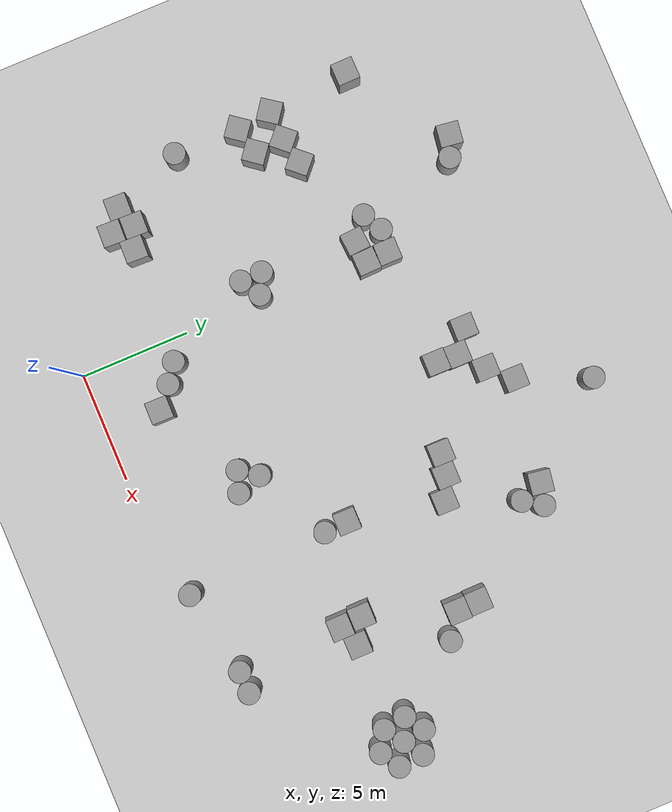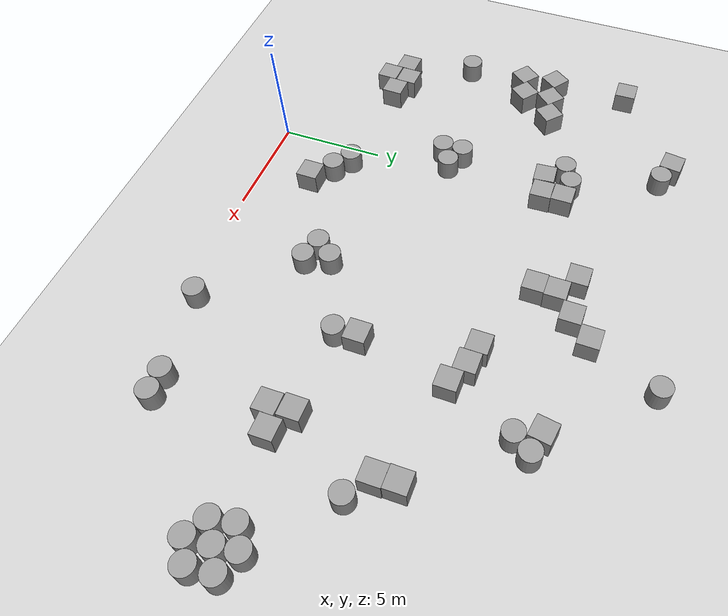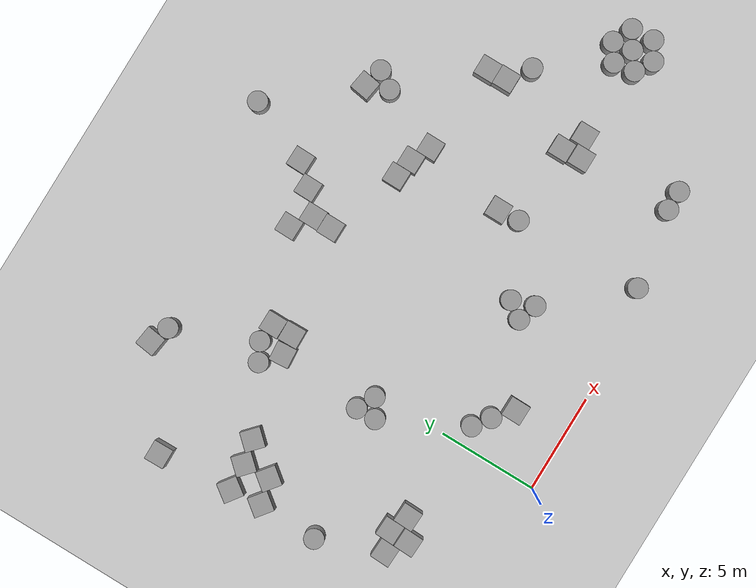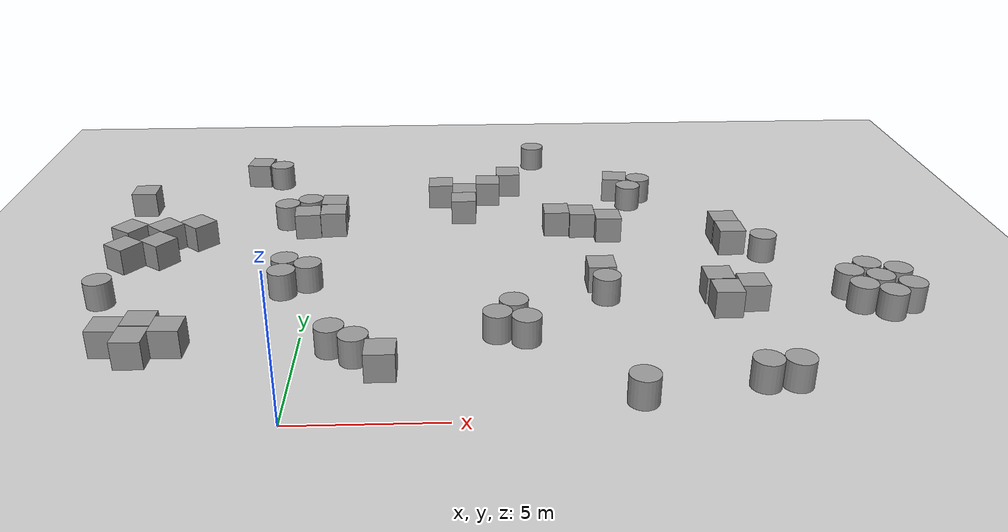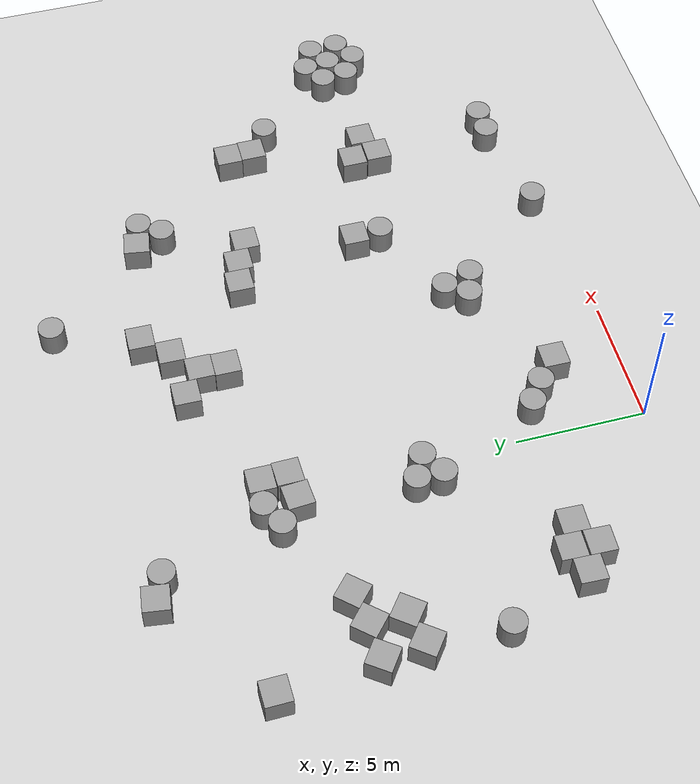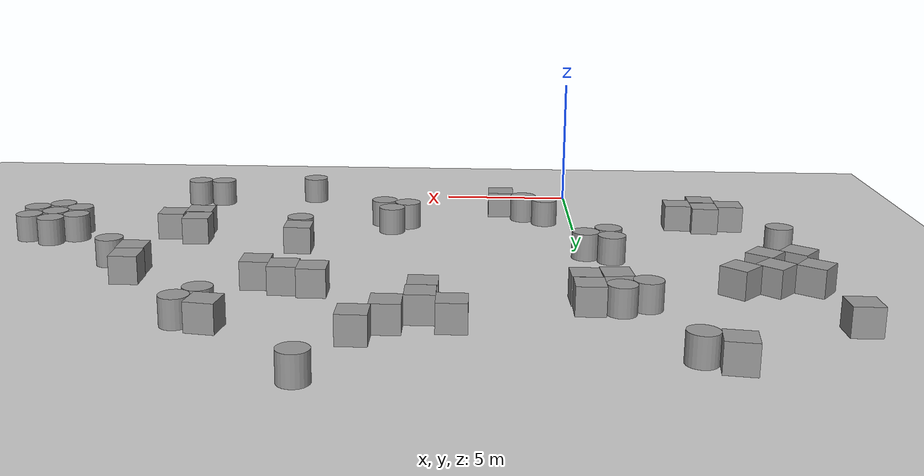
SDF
<sdf version="1.6">
 <world name="default">
  <model name="ground_plane">
   <static>1</static>
   <link name="link">
    <collision name="collision">
     <geometry><plane><normal>0 0 1</normal><size>100 100</size></plane></geometry>
     <surface><friction><ode><mu>100</mu><mu2>50</mu2></ode></friction></surface>
    </collision>
    <visual name="visual">
     <cast_shadows>0</cast_shadows>
     <geometry><plane><normal>0 0 1</normal><size>100 100</size></plane></geometry>
     <material>
      <script><uri>file://media/materials/scripts/gazebo.material</uri><name>Gazebo/Grey</name></script>
     </material>
    </visual>
   </link>
  </model>
  <model name="unit_box_1">
   <pose>-5.11694 4.7861 0.5 0 0 -0.03385</pose>
   <link name="link">
    <inertial>
     <mass>1</mass>
     <inertia>
      <ixx>0.166667</ixx>
      <ixy>0</ixy>
      <ixz>0</ixz>
      <iyy>0.166667</iyy>
      <iyz>0</iyz>
      <izz>0.166667</izz>
     </inertia>
    </inertial>
    <collision name="collision"><geometry><box><size>1 1 1</size></box></geometry></collision>
    <visual name="visual">
     <geometry><box><size>1 1 1</size></box></geometry>
     <material>
      <script><name>Gazebo/Grey</name><uri>file://media/materials/scripts/gazebo.material</uri></script>
     </material>
    </visual>
   </link>
  </model>
  <model name="unit_box_2">
   <pose>-5.15243 3.73753 0.5 0 0 -0.033765</pose>
   <link name="link">
    <inertial>
     <mass>1</mass>
     <inertia>
      <ixx>0.166667</ixx>
      <ixy>0</ixy>
      <ixz>0</ixz>
      <iyy>0.166667</iyy>
      <iyz>0</iyz>
      <izz>0.166667</izz>
     </inertia>
    </inertial>
    <collision name="collision"><geometry><box><size>1 1 1</size></box></geometry></collision>
    <visual name="visual">
     <geometry><box><size>1 1 1</size></box></geometry>
     <material>
      <script><name>Gazebo/Grey</name><uri>file://media/materials/scripts/gazebo.material</uri></script>
     </material>
    </visual>
   </link>
  </model>
  <model name="unit_cylinder_4">
   <pose>10.7497 0.834589 0.499942 0 0 -0.022066</pose>
   <link name="link">
    <inertial>
     <mass>1</mass>
     <inertia><ixx>0.145833</ixx><ixy>0</ixy><ixz>0</ixz><iyy>0.145833</iyy><iyz>0</iyz><izz>0.125</izz></inertia>
    </inertial>
    <collision name="collision">
     <geometry><cylinder><radius>0.5</radius><length>1</length></cylinder></geometry>
    </collision>
    <visual name="visual">
     <geometry><cylinder><radius>0.5</radius><length>1</length></cylinder></geometry>
     <material>
      <script><name>Gazebo/Grey</name><uri>file://media/materials/scripts/gazebo.material</uri></script>
     </material>
    </visual>
   </link>
  </model>
  <model name="unit_box_9">
   <pose>2.80573 2.69051 0.5 0 0 -0.00823</pose>
   <link name="link">
    <inertial>
     <mass>1</mass>
     <inertia>
      <ixx>0.166667</ixx>
      <ixy>0</ixy>
      <ixz>0</ixz>
      <iyy>0.166667</iyy>
      <iyz>0</iyz>
      <izz>0.166667</izz>
     </inertia>
    </inertial>
    <collision name="collision"><geometry><box><size>1 1 1</size></box></geometry></collision>
    <visual name="visual">
     <geometry><box><size>1 1 1</size></box></geometry>
     <material>
      <script><name>Gazebo/Grey</name><uri>file://media/materials/scripts/gazebo.material</uri></script>
     </material>
    </visual>
   </link>
  </model>
  <model name="unit_cylinder_8_0">
   <pose>-0.145957 8.69713 0.499942 0 0 -0.118352</pose>
   <link name="link">
    <inertial>
     <mass>1</mass>
     <inertia><ixx>0.145833</ixx><ixy>0</ixy><ixz>0</ixz><iyy>0.145833</iyy><iyz>0</iyz><izz>0.125</izz></inertia>
    </inertial>
    <collision name="collision">
     <geometry><cylinder><radius>0.5</radius><length>1</length></cylinder></geometry>
    </collision>
    <visual name="visual">
     <geometry><cylinder><radius>0.5</radius><length>1</length></cylinder></geometry>
     <material>
      <script><name>Gazebo/Grey</name><uri>file://media/materials/scripts/gazebo.material</uri></script>
     </material>
    </visual>
   </link>
  </model>
  <model name="unit_box_23">
   <pose>9.27836 13.3022 0.5 0 0 -0.004743</pose>
   <link name="link">
    <inertial>
     <mass>1</mass>
     <inertia>
      <ixx>0.166667</ixx>
      <ixy>0</ixy>
      <ixz>0</ixz>
      <iyy>0.166667</iyy>
      <iyz>0</iyz>
      <izz>0.166667</izz>
     </inertia>
    </inertial>
    <collision name="collision"><geometry><box><size>1 1 1</size></box></geometry></collision>
    <visual name="visual">
     <geometry><box><size>1 1 1</size></box></geometry>
     <material>
      <script><name>Gazebo/Grey</name><uri>file://media/materials/scripts/gazebo.material</uri></script>
     </material>
    </visual>
   </link>
  </model>
  <model name="unit_cylinder_13">
   <pose>14.6463 1.55239 0.499942 0 -0 0.00046</pose>
   <link name="link">
    <inertial>
     <mass>1</mass>
     <inertia><ixx>0.145833</ixx><ixy>0</ixy><ixz>0</ixz><iyy>0.145833</iyy><iyz>0</iyz><izz>0.125</izz></inertia>
    </inertial>
    <collision name="collision">
     <geometry><cylinder><radius>0.5</radius><length>1</length></cylinder></geometry>
    </collision>
    <visual name="visual">
     <geometry><cylinder><radius>0.5</radius><length>1</length></cylinder></geometry>
     <material>
      <script><name>Gazebo/Grey</name><uri>file://media/materials/scripts/gazebo.material</uri></script>
     </material>
    </visual>
   </link>
  </model>
  <model name="unit_cylinder_19">
   <pose>15.6462 1.57109 0.499942 0 0 -0.001342</pose>
   <link name="link">
    <inertial>
     <mass>1</mass>
     <inertia><ixx>0.145833</ixx><ixy>0</ixy><ixz>0</ixz><iyy>0.145833</iyy><iyz>0</iyz><izz>0.125</izz></inertia>
    </inertial>
    <collision name="collision">
     <geometry><cylinder><radius>0.5</radius><length>1</length></cylinder></geometry>
    </collision>
    <visual name="visual">
     <geometry><cylinder><radius>0.5</radius><length>1</length></cylinder></geometry>
     <material>
      <script><name>Gazebo/Grey</name><uri>file://media/materials/scripts/gazebo.material</uri></script>
     </material>
    </visual>
   </link>
  </model>
  <model name="unit_box_30">
   <pose>15.8822 11.2878 0.5 0 -0 0.004435</pose>
   <link name="link">
    <inertial>
     <mass>1</mass>
     <inertia>
      <ixx>0.166667</ixx>
      <ixy>0</ixy>
      <ixz>0</ixz>
      <iyy>0.166667</iyy>
      <iyz>0</iyz>
      <izz>0.166667</izz>
     </inertia>
    </inertial>
    <collision name="collision"><geometry><box><size>1 1 1</size></box></geometry></collision>
    <visual name="visual">
     <geometry><box><size>1 1 1</size></box></geometry>
     <material>
      <script><name>Gazebo/Grey</name><uri>file://media/materials/scripts/gazebo.material</uri></script>
     </material>
    </visual>
   </link>
  </model>
  <model name="unit_cylinder_20">
   <pose>16.9697 10.5115 0.499942 0 -0 0</pose>
   <link name="link">
    <inertial>
     <mass>1</mass>
     <inertia><ixx>0.145833</ixx><ixy>0</ixy><ixz>0</ixz><iyy>0.145833</iyy><iyz>0</iyz><izz>0.125</izz></inertia>
    </inertial>
    <collision name="collision">
     <geometry><cylinder><radius>0.5</radius><length>1</length></cylinder></geometry>
    </collision>
    <visual name="visual">
     <geometry><cylinder><radius>0.5</radius><length>1</length></cylinder></geometry>
     <material>
      <script><name>Gazebo/Grey</name><uri>file://media/materials/scripts/gazebo.material</uri></script>
     </material>
    </visual>
   </link>
  </model>
  <model name="unit_box_32">
   <pose>10.2775 13.1122 0.5 0 0 -0.004735</pose>
   <link name="link">
    <inertial>
     <mass>1</mass>
     <inertia>
      <ixx>0.166667</ixx>
      <ixy>0</ixy>
      <ixz>0</ixz>
      <iyy>0.166667</iyy>
      <iyz>0</iyz>
      <izz>0.166667</izz>
     </inertia>
    </inertial>
    <collision name="collision"><geometry><box><size>1 1 1</size></box></geometry></collision>
    <visual name="visual">
     <geometry><box><size>1 1 1</size></box></geometry>
     <material>
      <script><name>Gazebo/Grey</name><uri>file://media/materials/scripts/gazebo.material</uri></script>
     </material>
    </visual>
   </link>
  </model>
  <model name="unit_box_24_0">
   <pose>14.4861 7.34424 0.5 0 -0 0</pose>
   <link name="link">
    <inertial>
     <mass>1</mass>
     <inertia>
      <ixx>0.166667</ixx>
      <ixy>0</ixy>
      <ixz>0</ixz>
      <iyy>0.166667</iyy>
      <iyz>0</iyz>
      <izz>0.166667</izz>
     </inertia>
    </inertial>
    <collision name="collision"><geometry><box><size>1 1 1</size></box></geometry></collision>
    <visual name="visual">
     <geometry><box><size>1 1 1</size></box></geometry>
     <material>
      <script><name>Gazebo/Grey</name><uri>file://media/materials/scripts/gazebo.material</uri></script>
     </material>
    </visual>
   </link>
  </model>
  <model name="unit_box_24_1">
   <pose>14.5714 6.30894 0.5 0 -0 0.003235</pose>
   <link name="link">
    <inertial>
     <mass>1</mass>
     <inertia>
      <ixx>0.166667</ixx>
      <ixy>0</ixy>
      <ixz>0</ixz>
      <iyy>0.166667</iyy>
      <iyz>0</iyz>
      <izz>0.166667</izz>
     </inertia>
    </inertial>
    <collision name="collision"><geometry><box><size>1 1 1</size></box></geometry></collision>
    <visual name="visual">
     <geometry><box><size>1 1 1</size></box></geometry>
     <material>
      <script><name>Gazebo/Grey</name><uri>file://media/materials/scripts/gazebo.material</uri></script>
     </material>
    </visual>
   </link>
  </model>
  <model name="unit_box_16">
   <pose>-7.78105 15.9504 0.5 0 -0 0.016367</pose>
   <link name="link">
    <inertial>
     <mass>1</mass>
     <inertia>
      <ixx>0.166667</ixx>
      <ixy>0</ixy>
      <ixz>0</ixz>
      <iyy>0.166667</iyy>
      <iyz>0</iyz>
      <izz>0.166667</izz>
     </inertia>
    </inertial>
    <collision name="collision"><geometry><box><size>1 1 1</size></box></geometry></collision>
    <visual name="visual">
     <geometry><box><size>1 1 1</size></box></geometry>
     <material>
      <script><name>Gazebo/Grey</name><uri>file://media/materials/scripts/gazebo.material</uri></script>
     </material>
    </visual>
   </link>
  </model>
  <model name="unit_cylinder_8">
   <pose>-2.48633 18.702 0.499942 0 -0 0.042694</pose>
   <link name="link">
    <inertial>
     <mass>1</mass>
     <inertia><ixx>0.145833</ixx><ixy>0</ixy><ixz>0</ixz><iyy>0.145833</iyy><iyz>0</iyz><izz>0.125</izz></inertia>
    </inertial>
    <collision name="collision">
     <geometry><cylinder><radius>0.5</radius><length>1</length></cylinder></geometry>
    </collision>
    <visual name="visual">
     <geometry><cylinder><radius>0.5</radius><length>1</length></cylinder></geometry>
     <material>
      <script><name>Gazebo/Grey</name><uri>file://media/materials/scripts/gazebo.material</uri></script>
     </material>
    </visual>
   </link>
  </model>
  <model name="unit_box_20_0">
   <pose>-3.44337 19.0871 0.5 0 0 -0.134541</pose>
   <link name="link">
    <inertial>
     <mass>1</mass>
     <inertia>
      <ixx>0.166667</ixx>
      <ixy>0</ixy>
      <ixz>0</ixz>
      <iyy>0.166667</iyy>
      <iyz>0</iyz>
      <izz>0.166667</izz>
     </inertia>
    </inertial>
    <collision name="collision"><geometry><box><size>1 1 1</size></box></geometry></collision>
    <visual name="visual">
     <geometry><box><size>1 1 1</size></box></geometry>
     <material>
      <script><name>Gazebo/Grey</name><uri>file://media/materials/scripts/gazebo.material</uri></script>
     </material>
    </visual>
   </link>
  </model>
  <model name="unit_box_20_1">
   <pose>12.1469 16.8043 0.5 0 0 -0.153938</pose>
   <link name="link">
    <inertial>
     <mass>1</mass>
     <inertia>
      <ixx>0.166667</ixx>
      <ixy>0</ixy>
      <ixz>0</ixz>
      <iyy>0.166667</iyy>
      <iyz>0</iyz>
      <izz>0.166667</izz>
     </inertia>
    </inertial>
    <collision name="collision"><geometry><box><size>1 1 1</size></box></geometry></collision>
    <visual name="visual">
     <geometry><box><size>1 1 1</size></box></geometry>
     <material>
      <script><name>Gazebo/Grey</name><uri>file://media/materials/scripts/gazebo.material</uri></script>
     </material>
    </visual>
   </link>
  </model>
  <model name="unit_cylinder_43">
   <pose>13.1335 16.5527 0.499942 0 -0 0.038735</pose>
   <link name="link">
    <inertial>
     <mass>1</mass>
     <inertia><ixx>0.145833</ixx><ixy>0</ixy><ixz>0</ixz><iyy>0.145833</iyy><iyz>0</iyz><izz>0.125</izz></inertia>
    </inertial>
    <collision name="collision">
     <geometry><cylinder><radius>0.5</radius><length>1</length></cylinder></geometry>
    </collision>
    <visual name="visual">
     <geometry><cylinder><radius>0.5</radius><length>1</length></cylinder></geometry>
     <material>
      <script><name>Gazebo/Grey</name><uri>file://media/materials/scripts/gazebo.material</uri></script>
     </material>
    </visual>
   </link>
  </model>
  <model name="unit_cylinder_44">
   <pose>12.5787 15.7207 0.499942 0 -0 0.000156</pose>
   <link name="link">
    <inertial>
     <mass>1</mass>
     <inertia><ixx>0.145833</ixx><ixy>0</ixy><ixz>0</ixz><iyy>0.145833</iyy><iyz>0</iyz><izz>0.125</izz></inertia>
    </inertial>
    <collision name="collision">
     <geometry><cylinder><radius>0.5</radius><length>1</length></cylinder></geometry>
    </collision>
    <visual name="visual">
     <geometry><cylinder><radius>0.5</radius><length>1</length></cylinder></geometry>
     <material>
      <script><name>Gazebo/Grey</name><uri>file://media/materials/scripts/gazebo.material</uri></script>
     </material>
    </visual>
   </link>
  </model>
  <model name="unit_cylinder_47">
   <pose>-1.02068 8.1456 0.499942 0 -0 0.068677</pose>
   <link name="link">
    <inertial>
     <mass>1</mass>
     <inertia><ixx>0.145833</ixx><ixy>0</ixy><ixz>0</ixz><iyy>0.145833</iyy><iyz>0</iyz><izz>0.125</izz></inertia>
    </inertial>
    <collision name="collision">
     <geometry><cylinder><radius>0.5</radius><length>1</length></cylinder></geometry>
    </collision>
    <visual name="visual">
     <geometry><cylinder><radius>0.5</radius><length>1</length></cylinder></geometry>
     <material>
      <script><name>Gazebo/Grey</name><uri>file://media/materials/scripts/gazebo.material</uri></script>
     </material>
    </visual>
   </link>
  </model>
  <model name="unit_box_20">
   <pose>15.846 12.2877 0.5 0 -0 0.004439</pose>
   <link name="link">
    <inertial>
     <mass>1</mass>
     <inertia>
      <ixx>0.166667</ixx>
      <ixy>0</ixy>
      <ixz>0</ixz>
      <iyy>0.166667</iyy>
      <iyz>0</iyz>
      <izz>0.166667</izz>
     </inertia>
    </inertial>
    <collision name="collision"><geometry><box><size>1 1 1</size></box></geometry></collision>
    <visual name="visual">
     <geometry><box><size>1 1 1</size></box></geometry>
     <material>
      <script><name>Gazebo/Grey</name><uri>file://media/materials/scripts/gazebo.material</uri></script>
     </material>
    </visual>
   </link>
  </model>
  <model name="unit_box_31_0">
   <pose>15.5701 6.73223 0.5 0 -0 0.003247</pose>
   <link name="link">
    <inertial>
     <mass>1</mass>
     <inertia>
      <ixx>0.166667</ixx>
      <ixy>0</ixy>
      <ixz>0</ixz>
      <iyy>0.166667</iyy>
      <iyz>0</iyz>
      <izz>0.166667</izz>
     </inertia>
    </inertial>
    <collision name="collision"><geometry><box><size>1 1 1</size></box></geometry></collision>
    <visual name="visual">
     <geometry><box><size>1 1 1</size></box></geometry>
     <material>
      <script><name>Gazebo/Grey</name><uri>file://media/materials/scripts/gazebo.material</uri></script>
     </material>
    </visual>
   </link>
  </model>
  <model name="unit_box_21">
   <pose>-4.12984 4.38578 0.5 0 0 -0.033773</pose>
   <link name="link">
    <inertial>
     <mass>1</mass>
     <inertia>
      <ixx>0.166667</ixx>
      <ixy>0</ixy>
      <ixz>0</ixz>
      <iyy>0.166667</iyy>
      <iyz>0</iyz>
      <izz>0.166667</izz>
     </inertia>
    </inertial>
    <collision name="collision"><geometry><box><size>1 1 1</size></box></geometry></collision>
    <visual name="visual">
     <geometry><box><size>1 1 1</size></box></geometry>
     <material>
      <script><name>Gazebo/Grey</name><uri>file://media/materials/scripts/gazebo.material</uri></script>
     </material>
    </visual>
   </link>
  </model>
  <model name="unit_cylinder_9_3">
   <pose>-1.03987 9.14556 0.499942 0 -0 0.013919</pose>
   <link name="link">
    <inertial>
     <mass>1</mass>
     <inertia><ixx>0.145833</ixx><ixy>0</ixy><ixz>0</ixz><iyy>0.145833</iyy><iyz>0</iyz><izz>0.125</izz></inertia>
    </inertial>
    <collision name="collision">
     <geometry><cylinder><radius>0.5</radius><length>1</length></cylinder></geometry>
    </collision>
    <visual name="visual">
     <geometry><cylinder><radius>0.5</radius><length>1</length></cylinder></geometry>
     <material>
      <script><name>Gazebo/Grey</name><uri>file://media/materials/scripts/gazebo.material</uri></script>
     </material>
    </visual>
   </link>
  </model>
  <model name="unit_box_22_0">
   <pose>0.312508 13.5619 0.5 0 -0 0.026596</pose>
   <link name="link">
    <inertial>
     <mass>1</mass>
     <inertia>
      <ixx>0.166667</ixx>
      <ixy>0</ixy>
      <ixz>0</ixz>
      <iyy>0.166667</iyy>
      <iyz>0</iyz>
      <izz>0.166667</izz>
     </inertia>
    </inertial>
    <collision name="collision"><geometry><box><size>1 1 1</size></box></geometry></collision>
    <visual name="visual">
     <geometry><box><size>1 1 1</size></box></geometry>
     <material>
      <script><name>Gazebo/Grey</name><uri>file://media/materials/scripts/gazebo.material</uri></script>
     </material>
    </visual>
   </link>
  </model>
  <model name="unit_box_22_1">
   <pose>-0.705059 13.4407 0.5 0 -0 0.075099</pose>
   <link name="link">
    <inertial>
     <mass>1</mass>
     <inertia>
      <ixx>0.166667</ixx>
      <ixy>0</ixy>
      <ixz>0</ixz>
      <iyy>0.166667</iyy>
      <iyz>0</iyz>
      <izz>0.166667</izz>
     </inertia>
    </inertial>
    <collision name="collision"><geometry><box><size>1 1 1</size></box></geometry></collision>
    <visual name="visual">
     <geometry><box><size>1 1 1</size></box></geometry>
     <material>
      <script><name>Gazebo/Grey</name><uri>file://media/materials/scripts/gazebo.material</uri></script>
     </material>
    </visual>
   </link>
  </model>
  <model name="unit_box_0_0">
   <pose>-6.1293 4.4403 0.5 0 0 -0.033942</pose>
   <link name="link">
    <inertial>
     <mass>1</mass>
     <inertia>
      <ixx>0.166667</ixx>
      <ixy>0</ixy>
      <ixz>0</ixz>
      <iyy>0.166667</iyy>
      <iyz>0</iyz>
      <izz>0.166667</izz>
     </inertia>
    </inertial>
    <collision name="collision"><geometry><box><size>1 1 1</size></box></geometry></collision>
    <visual name="visual">
     <geometry><box><size>1 1 1</size></box></geometry>
     <material>
      <script><name>Gazebo/Grey</name><uri>file://media/materials/scripts/gazebo.material</uri></script>
     </material>
    </visual>
   </link>
  </model>
  <model name="unit_cylinder_10">
   <pose>1.90958 3.49435 0.499942 0 -0 0.005413</pose>
   <link name="link">
    <inertial>
     <mass>1</mass>
     <inertia><ixx>0.145833</ixx><ixy>0</ixy><ixz>0</ixz><iyy>0.145833</iyy><iyz>0</iyz><izz>0.125</izz></inertia>
    </inertial>
    <collision name="collision">
     <geometry><cylinder><radius>0.5</radius><length>1</length></cylinder></geometry>
    </collision>
    <visual name="visual">
     <geometry><cylinder><radius>0.5</radius><length>1</length></cylinder></geometry>
     <material>
      <script><name>Gazebo/Grey</name><uri>file://media/materials/scripts/gazebo.material</uri></script>
     </material>
    </visual>
   </link>
  </model>
  <model name="unit_cylinder_22">
   <pose>1.08401 4.0887 0.499942 0 -0 0</pose>
   <link name="link">
    <inertial>
     <mass>1</mass>
     <inertia><ixx>0.145833</ixx><ixy>0</ixy><ixz>0</ixz><iyy>0.145833</iyy><iyz>0</iyz><izz>0.125</izz></inertia>
    </inertial>
    <collision name="collision">
     <geometry><cylinder><radius>0.5</radius><length>1</length></cylinder></geometry>
    </collision>
    <visual name="visual">
     <geometry><cylinder><radius>0.5</radius><length>1</length></cylinder></geometry>
     <material>
      <script><name>Gazebo/Grey</name><uri>file://media/materials/scripts/gazebo.material</uri></script>
     </material>
    </visual>
   </link>
  </model>
  <model name="unit_box_0">
   <pose>7.53704 17.5432 0.5 0 0 -0.015802</pose>
   <link name="link">
    <inertial>
     <mass>1</mass>
     <inertia>
      <ixx>0.166667</ixx>
      <ixy>0</ixy>
      <ixz>0</ixz>
      <iyy>0.166667</iyy>
      <iyz>0</iyz>
      <izz>0.166667</izz>
     </inertia>
    </inertial>
    <collision name="collision"><geometry><box><size>1 1 1</size></box></geometry></collision>
    <visual name="visual">
     <geometry><box><size>1 1 1</size></box></geometry>
     <material>
      <script><name>Gazebo/Grey</name><uri>file://media/materials/scripts/gazebo.material</uri></script>
     </material>
    </visual>
   </link>
  </model>
  <model name="unit_box_4">
   <pose>11.2753 12.6381 0.5 0 0 -0.004756</pose>
   <link name="link">
    <inertial>
     <mass>1</mass>
     <inertia>
      <ixx>0.166667</ixx>
      <ixy>0</ixy>
      <ixz>0</ixz>
      <iyy>0.166667</iyy>
      <iyz>0</iyz>
      <izz>0.166667</izz>
     </inertia>
    </inertial>
    <collision name="collision"><geometry><box><size>1 1 1</size></box></geometry></collision>
    <visual name="visual">
     <geometry><box><size>1 1 1</size></box></geometry>
     <material>
      <script><name>Gazebo/Grey</name><uri>file://media/materials/scripts/gazebo.material</uri></script>
     </material>
    </visual>
   </link>
  </model>
  <model name="unit_box_22">
   <pose>6.61688 16.5559 0.5 0 0 -0.012365</pose>
   <link name="link">
    <inertial>
     <mass>1</mass>
     <inertia>
      <ixx>0.166667</ixx>
      <ixy>0</ixy>
      <ixz>0</ixz>
      <iyy>0.166667</iyy>
      <iyz>0</iyz>
      <izz>0.166667</izz>
     </inertia>
    </inertial>
    <collision name="collision"><geometry><box><size>1 1 1</size></box></geometry></collision>
    <visual name="visual">
     <geometry><box><size>1 1 1</size></box></geometry>
     <material>
      <script><name>Gazebo/Grey</name><uri>file://media/materials/scripts/gazebo.material</uri></script>
     </material>
    </visual>
   </link>
  </model>
  <model name="unit_box_29">
   <pose>5.60779 15.653 0.5 0 0 -0.005281</pose>
   <link name="link">
    <inertial>
     <mass>1</mass>
     <inertia>
      <ixx>0.166667</ixx>
      <ixy>0</ixy>
      <ixz>0</ixz>
      <iyy>0.166667</iyy>
      <iyz>0</iyz>
      <izz>0.166667</izz>
     </inertia>
    </inertial>
    <collision name="collision"><geometry><box><size>1 1 1</size></box></geometry></collision>
    <visual name="visual">
     <geometry><box><size>1 1 1</size></box></geometry>
     <material>
      <script><name>Gazebo/Grey</name><uri>file://media/materials/scripts/gazebo.material</uri></script>
     </material>
    </visual>
   </link>
  </model>
  <model name="unit_box_31">
   <pose>4.61246 16.3778 0.5 0 0 -0.009287</pose>
   <link name="link">
    <inertial>
     <mass>1</mass>
     <inertia>
      <ixx>0.166667</ixx>
      <ixy>0</ixy>
      <ixz>0</ixz>
      <iyy>0.166667</iyy>
      <iyz>0</iyz>
      <izz>0.166667</izz>
     </inertia>
    </inertial>
    <collision name="collision"><geometry><box><size>1 1 1</size></box></geometry></collision>
    <visual name="visual">
     <geometry><box><size>1 1 1</size></box></geometry>
     <material>
      <script><name>Gazebo/Grey</name><uri>file://media/materials/scripts/gazebo.material</uri></script>
     </material>
    </visual>
   </link>
  </model>
  <model name="unit_box_43">
   <pose>5.56564 14.6525 0.5 0 0 -0.003893</pose>
   <link name="link">
    <inertial>
     <mass>1</mass>
     <inertia>
      <ixx>0.166667</ixx>
      <ixy>0</ixy>
      <ixz>0</ixz>
      <iyy>0.166667</iyy>
      <iyz>0</iyz>
      <izz>0.166667</izz>
     </inertia>
    </inertial>
    <collision name="collision"><geometry><box><size>1 1 1</size></box></geometry></collision>
    <visual name="visual">
     <geometry><box><size>1 1 1</size></box></geometry>
     <material>
      <script><name>Gazebo/Grey</name><uri>file://media/materials/scripts/gazebo.material</uri></script>
     </material>
    </visual>
   </link>
  </model>
  <model name="unit_box_33_0">
   <pose>0.264105 14.5756 0.5 0 0 -0.003083</pose>
   <link name="link">
    <inertial>
     <mass>1</mass>
     <inertia>
      <ixx>0.166667</ixx>
      <ixy>0</ixy>
      <ixz>0</ixz>
      <iyy>0.166667</iyy>
      <iyz>0</iyz>
      <izz>0.166667</izz>
     </inertia>
    </inertial>
    <collision name="collision"><geometry><box><size>1 1 1</size></box></geometry></collision>
    <visual name="visual">
     <geometry><box><size>1 1 1</size></box></geometry>
     <material>
      <script><name>Gazebo/Grey</name><uri>file://media/materials/scripts/gazebo.material</uri></script>
     </material>
    </visual>
   </link>
  </model>
  <model name="unit_cylinder_37">
   <pose>-0.736104 14.6965 0.499942 0 0 -0.075814</pose>
   <link name="link">
    <inertial>
     <mass>1</mass>
     <inertia><ixx>0.145833</ixx><ixy>0</ixy><ixz>0</ixz><iyy>0.145833</iyy><iyz>0</iyz><izz>0.125</izz></inertia>
    </inertial>
    <collision name="collision">
     <geometry><cylinder><radius>0.5</radius><length>1</length></cylinder></geometry>
    </collision>
    <visual name="visual">
     <geometry><cylinder><radius>0.5</radius><length>1</length></cylinder></geometry>
     <material>
      <script><name>Gazebo/Grey</name><uri>file://media/materials/scripts/gazebo.material</uri></script>
     </material>
    </visual>
   </link>
  </model>
  <model name="unit_cylinder_38">
   <pose>-1.61999 14.2288 0.499942 0 -0 0.0488</pose>
   <link name="link">
    <inertial>
     <mass>1</mass>
     <inertia><ixx>0.145833</ixx><ixy>0</ixy><ixz>0</ixz><iyy>0.145833</iyy><iyz>0</iyz><izz>0.125</izz></inertia>
    </inertial>
    <collision name="collision">
     <geometry><cylinder><radius>0.5</radius><length>1</length></cylinder></geometry>
    </collision>
    <visual name="visual">
     <geometry><cylinder><radius>0.5</radius><length>1</length></cylinder></geometry>
     <material>
      <script><name>Gazebo/Grey</name><uri>file://media/materials/scripts/gazebo.material</uri></script>
     </material>
    </visual>
   </link>
  </model>
  <model name="unit_box_18_clone_clone_0">
   <pose>-7.44029 12.2079 0.5 0 -0 0.944826</pose>
   <link name="link">
    <inertial>
     <mass>1</mass>
     <inertia>
      <ixx>0.166667</ixx>
      <ixy>0</ixy>
      <ixz>0</ixz>
      <iyy>0.166667</iyy>
      <iyz>0</iyz>
      <izz>0.166667</izz>
     </inertia>
    </inertial>
    <collision name="collision"><geometry><box><size>1 1 1</size></box></geometry></collision>
    <visual name="visual">
     <geometry><box><size>1 1 1</size></box></geometry>
     <material>
      <script><name>Gazebo/Grey</name><uri>file://media/materials/scripts/gazebo.material</uri></script>
     </material>
    </visual>
   </link>
  </model>
  <model name="unit_box_18_clone_clone_1">
   <pose>-6.08253 12.295 0.5 0 -0 0.840633</pose>
   <link name="link">
    <inertial>
     <mass>1</mass>
     <inertia>
      <ixx>0.166667</ixx>
      <ixy>0</ixy>
      <ixz>0</ixz>
      <iyy>0.166667</iyy>
      <iyz>0</iyz>
      <izz>0.166667</izz>
     </inertia>
    </inertial>
    <collision name="collision"><geometry><box><size>1 1 1</size></box></geometry></collision>
    <visual name="visual">
     <geometry><box><size>1 1 1</size></box></geometry>
     <material>
      <script><name>Gazebo/Grey</name><uri>file://media/materials/scripts/gazebo.material</uri></script>
     </material>
    </visual>
   </link>
  </model>
  <model name="unit_box_18_clone_clone_2">
   <pose>-4.87322 12.5521 0.5 0 -0 0.832474</pose>
   <link name="link">
    <inertial>
     <mass>1</mass>
     <inertia>
      <ixx>0.166667</ixx>
      <ixy>0</ixy>
      <ixz>0</ixz>
      <iyy>0.166667</iyy>
      <iyz>0</iyz>
      <izz>0.166667</izz>
     </inertia>
    </inertial>
    <collision name="collision"><geometry><box><size>1 1 1</size></box></geometry></collision>
    <visual name="visual">
     <geometry><box><size>1 1 1</size></box></geometry>
     <material>
      <script><name>Gazebo/Grey</name><uri>file://media/materials/scripts/gazebo.material</uri></script>
     </material>
    </visual>
   </link>
  </model>
  <model name="unit_cylinder_12">
   <pose>7.12767 5.6329 0.499942 0 0 -0.103867</pose>
   <link name="link">
    <inertial>
     <mass>1</mass>
     <inertia><ixx>0.145833</ixx><ixy>0</ixy><ixz>0</ixz><iyy>0.145833</iyy><iyz>0</iyz><izz>0.125</izz></inertia>
    </inertial>
    <collision name="collision">
     <geometry><cylinder><radius>0.5</radius><length>1</length></cylinder></geometry>
    </collision>
    <visual name="visual">
     <geometry><cylinder><radius>0.5</radius><length>1</length></cylinder></geometry>
     <material>
      <script><name>Gazebo/Grey</name><uri>file://media/materials/scripts/gazebo.material</uri></script>
     </material>
    </visual>
   </link>
  </model>
  <model name="unit_cylinder_25">
   <pose>7.49491 4.49832 0.499942 0 -0 0.053417</pose>
   <link name="link">
    <inertial>
     <mass>1</mass>
     <inertia><ixx>0.145833</ixx><ixy>0</ixy><ixz>0</ixz><iyy>0.145833</iyy><iyz>0</iyz><izz>0.125</izz></inertia>
    </inertial>
    <collision name="collision">
     <geometry><cylinder><radius>0.5</radius><length>1</length></cylinder></geometry>
    </collision>
    <visual name="visual">
     <geometry><cylinder><radius>0.5</radius><length>1</length></cylinder></geometry>
     <material>
      <script><name>Gazebo/Grey</name><uri>file://media/materials/scripts/gazebo.material</uri></script>
     </material>
    </visual>
   </link>
  </model>
  <model name="unit_cylinder_30">
   <pose>6.54654 4.81575 0.499942 0 0 -0.04903</pose>
   <link name="link">
    <inertial>
     <mass>1</mass>
     <inertia><ixx>0.145833</ixx><ixy>0</ixy><ixz>0</ixz><iyy>0.145833</iyy><iyz>0</iyz><izz>0.125</izz></inertia>
    </inertial>
    <collision name="collision">
     <geometry><cylinder><radius>0.5</radius><length>1</length></cylinder></geometry>
    </collision>
    <visual name="visual">
     <geometry><cylinder><radius>0.5</radius><length>1</length></cylinder></geometry>
     <material>
      <script><name>Gazebo/Grey</name><uri>file://media/materials/scripts/gazebo.material</uri></script>
     </material>
    </visual>
   </link>
  </model>
  <model name="unit_cylinder_39">
   <pose>8.84007 20.7216 0.499942 0 -0 0</pose>
   <link name="link">
    <inertial>
     <mass>1</mass>
     <inertia><ixx>0.145833</ixx><ixy>0</ixy><ixz>0</ixz><iyy>0.145833</iyy><iyz>0</iyz><izz>0.125</izz></inertia>
    </inertial>
    <collision name="collision">
     <geometry><cylinder><radius>0.5</radius><length>1</length></cylinder></geometry>
    </collision>
    <visual name="visual">
     <geometry><cylinder><radius>0.5</radius><length>1</length></cylinder></geometry>
     <material>
      <script><name>Gazebo/Grey</name><uri>file://media/materials/scripts/gazebo.material</uri></script>
     </material>
    </visual>
   </link>
  </model>
  <model name="unit_box_18_clone_clone_0_clone">
   <pose>-7.2682 10.6163 0.5 0 -0 0.918095</pose>
   <link name="link">
    <inertial>
     <mass>1</mass>
     <inertia>
      <ixx>0.166667</ixx>
      <ixy>0</ixy>
      <ixz>0</ixz>
      <iyy>0.166667</iyy>
      <iyz>0</iyz>
      <izz>0.166667</izz>
     </inertia>
    </inertial>
    <collision name="collision"><geometry><box><size>1 1 1</size></box></geometry></collision>
    <visual name="visual">
     <geometry><box><size>1 1 1</size></box></geometry>
     <material>
      <script><name>Gazebo/Grey</name><uri>file://media/materials/scripts/gazebo.material</uri></script>
     </material>
    </visual>
   </link>
  </model>
  <model name="unit_box_18_clone_clone_0_clone_0">
   <pose>-6.04076 10.9344 0.5 0 -0 0.911583</pose>
   <link name="link">
    <inertial>
     <mass>1</mass>
     <inertia>
      <ixx>0.166667</ixx>
      <ixy>0</ixy>
      <ixz>0</ixz>
      <iyy>0.166667</iyy>
      <iyz>0</iyz>
      <izz>0.166667</izz>
     </inertia>
    </inertial>
    <collision name="collision"><geometry><box><size>1 1 1</size></box></geometry></collision>
    <visual name="visual">
     <geometry><box><size>1 1 1</size></box></geometry>
     <material>
      <script><name>Gazebo/Grey</name><uri>file://media/materials/scripts/gazebo.material</uri></script>
     </material>
    </visual>
   </link>
  </model>
  <model name="unit_cylinder_45">
   <pose>-7.33442 7.63286 0.499942 0 -0 0</pose>
   <link name="link">
    <inertial>
     <mass>1</mass>
     <inertia><ixx>0.145833</ixx><ixy>0</ixy><ixz>0</ixz><iyy>0.145833</iyy><iyz>0</iyz><izz>0.125</izz></inertia>
    </inertial>
    <collision name="collision">
     <geometry><cylinder><radius>0.5</radius><length>1</length></cylinder></geometry>
    </collision>
    <visual name="visual">
     <geometry><cylinder><radius>0.5</radius><length>1</length></cylinder></geometry>
     <material>
      <script><name>Gazebo/Grey</name><uri>file://media/materials/scripts/gazebo.material</uri></script>
     </material>
    </visual>
   </link>
  </model>
  <model name="unit_box_7">
   <pose>10.4468 8.36156 0.5 0 -0 0</pose>
   <link name="link">
    <inertial>
     <mass>1</mass>
     <inertia>
      <ixx>0.166667</ixx>
      <ixy>0</ixy>
      <ixz>0</ixz>
      <iyy>0.166667</iyy>
      <iyz>0</iyz>
      <izz>0.166667</izz>
     </inertia>
    </inertial>
    <collision name="collision"><geometry><box><size>1 1 1</size></box></geometry></collision>
    <visual name="visual">
     <geometry><box><size>1 1 1</size></box></geometry>
     <material>
      <script><name>Gazebo/Grey</name><uri>file://media/materials/scripts/gazebo.material</uri></script>
     </material>
    </visual>
   </link>
  </model>
  <model name="unit_cylinder_46">
   <pose>20.0319 7.9459 0.499942 0 -0 5e-05</pose>
   <link name="link">
    <inertial>
     <mass>1</mass>
     <inertia><ixx>0.145833</ixx><ixy>0</ixy><ixz>0</ixz><iyy>0.145833</iyy><iyz>0</iyz><izz>0.125</izz></inertia>
    </inertial>
    <collision name="collision">
     <geometry><cylinder><radius>0.5</radius><length>1</length></cylinder></geometry>
    </collision>
    <visual name="visual">
     <geometry><cylinder><radius>0.5</radius><length>1</length></cylinder></geometry>
     <material>
      <script><name>Gazebo/Grey</name><uri>file://media/materials/scripts/gazebo.material</uri></script>
     </material>
    </visual>
   </link>
  </model>
  <model name="unit_cylinder_48">
   <pose>20.1715 6.94866 0.499942 0 0 -0.117522</pose>
   <link name="link">
    <inertial>
     <mass>1</mass>
     <inertia><ixx>0.145833</ixx><ixy>0</ixy><ixz>0</ixz><iyy>0.145833</iyy><iyz>0</iyz><izz>0.125</izz></inertia>
    </inertial>
    <collision name="collision">
     <geometry><cylinder><radius>0.5</radius><length>1</length></cylinder></geometry>
    </collision>
    <visual name="visual">
     <geometry><cylinder><radius>0.5</radius><length>1</length></cylinder></geometry>
     <material>
      <script><name>Gazebo/Grey</name><uri>file://media/materials/scripts/gazebo.material</uri></script>
     </material>
    </visual>
   </link>
  </model>
  <model name="unit_cylinder_49">
   <pose>21.0112 7.49174 0.499942 0 0 -0.000448</pose>
   <link name="link">
    <inertial>
     <mass>1</mass>
     <inertia><ixx>0.145833</ixx><ixy>0</ixy><ixz>0</ixz><iyy>0.145833</iyy><iyz>0</iyz><izz>0.125</izz></inertia>
    </inertial>
    <collision name="collision">
     <geometry><cylinder><radius>0.5</radius><length>1</length></cylinder></geometry>
    </collision>
    <visual name="visual">
     <geometry><cylinder><radius>0.5</radius><length>1</length></cylinder></geometry>
     <material>
      <script><name>Gazebo/Grey</name><uri>file://media/materials/scripts/gazebo.material</uri></script>
     </material>
    </visual>
   </link>
  </model>
  <model name="unit_cylinder_50">
   <pose>21.0887 6.3525 0.499942 0 -0 0.029262</pose>
   <link name="link">
    <inertial>
     <mass>1</mass>
     <inertia><ixx>0.145833</ixx><ixy>0</ixy><ixz>0</ixz><iyy>0.145833</iyy><iyz>0</iyz><izz>0.125</izz></inertia>
    </inertial>
    <collision name="collision">
     <geometry><cylinder><radius>0.5</radius><length>1</length></cylinder></geometry>
    </collision>
    <visual name="visual">
     <geometry><cylinder><radius>0.5</radius><length>1</length></cylinder></geometry>
     <material>
      <script><name>Gazebo/Grey</name><uri>file://media/materials/scripts/gazebo.material</uri></script>
     </material>
    </visual>
   </link>
  </model>
  <model name="unit_cylinder_51">
   <pose>20.23 5.8269 0.499942 0 -0 0.070301</pose>
   <link name="link">
    <inertial>
     <mass>1</mass>
     <inertia><ixx>0.145833</ixx><ixy>0</ixy><ixz>0</ixz><iyy>0.145833</iyy><iyz>0</iyz><izz>0.125</izz></inertia>
    </inertial>
    <collision name="collision">
     <geometry><cylinder><radius>0.5</radius><length>1</length></cylinder></geometry>
    </collision>
    <visual name="visual">
     <geometry><cylinder><radius>0.5</radius><length>1</length></cylinder></geometry>
     <material>
      <script><name>Gazebo/Grey</name><uri>file://media/materials/scripts/gazebo.material</uri></script>
     </material>
    </visual>
   </link>
  </model>
  <model name="unit_cylinder_52">
   <pose>19.3717 6.34832 0.499942 0 -0 0.033961</pose>
   <link name="link">
    <inertial>
     <mass>1</mass>
     <inertia><ixx>0.145833</ixx><ixy>0</ixy><ixz>0</ixz><iyy>0.145833</iyy><iyz>0</iyz><izz>0.125</izz></inertia>
    </inertial>
    <collision name="collision">
     <geometry><cylinder><radius>0.5</radius><length>1</length></cylinder></geometry>
    </collision>
    <visual name="visual">
     <geometry><cylinder><radius>0.5</radius><length>1</length></cylinder></geometry>
     <material>
      <script><name>Gazebo/Grey</name><uri>file://media/materials/scripts/gazebo.material</uri></script>
     </material>
    </visual>
   </link>
  </model>
  <model name="unit_cylinder_53">
   <pose>19.2039 7.38514 0.499942 0 0 -0.000418</pose>
   <link name="link">
    <inertial>
     <mass>1</mass>
     <inertia><ixx>0.145833</ixx><ixy>0</ixy><ixz>0</ixz><iyy>0.145833</iyy><iyz>0</iyz><izz>0.125</izz></inertia>
    </inertial>
    <collision name="collision">
     <geometry><cylinder><radius>0.5</radius><length>1</length></cylinder></geometry>
    </collision>
    <visual name="visual">
     <geometry><cylinder><radius>0.5</radius><length>1</length></cylinder></geometry>
     <material>
      <script><name>Gazebo/Grey</name><uri>file://media/materials/scripts/gazebo.material</uri></script>
     </material>
    </visual>
   </link>
  </model>
  <model name="unit_cylinder_26_1">
   <pose>10.5186 7.28815 0.499942 0 -0 0</pose>
   <link name="link">
    <inertial>
     <mass>1</mass>
     <inertia><ixx>0.145833</ixx><ixy>0</ixy><ixz>0</ixz><iyy>0.145833</iyy><iyz>0</iyz><izz>0.125</izz></inertia>
    </inertial>
    <collision name="collision">
     <geometry><cylinder><radius>0.5</radius><length>1</length></cylinder></geometry>
    </collision>
    <visual name="visual">
     <geometry><cylinder><radius>0.5</radius><length>1</length></cylinder></geometry>
     <material>
      <script><name>Gazebo/Grey</name><uri>file://media/materials/scripts/gazebo.material</uri></script>
     </material>
    </visual>
   </link>
  </model>
 </world>
</sdf>
